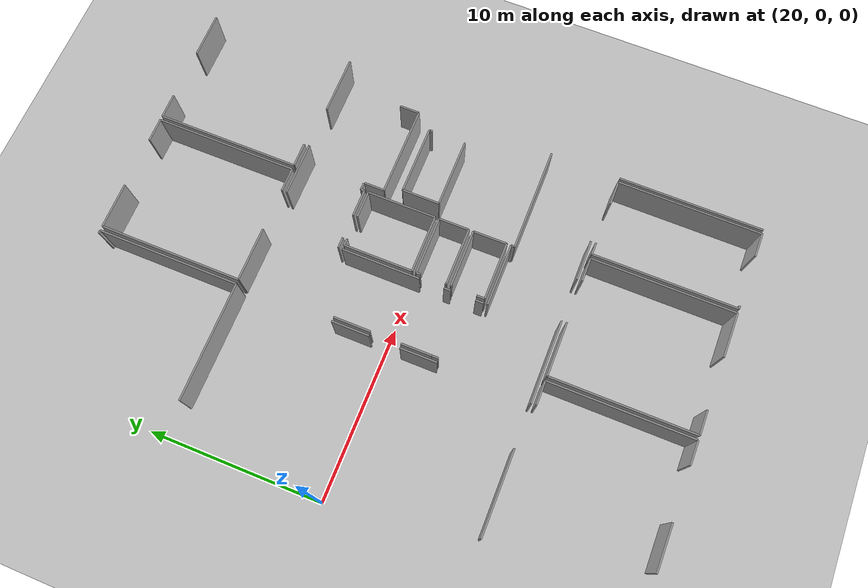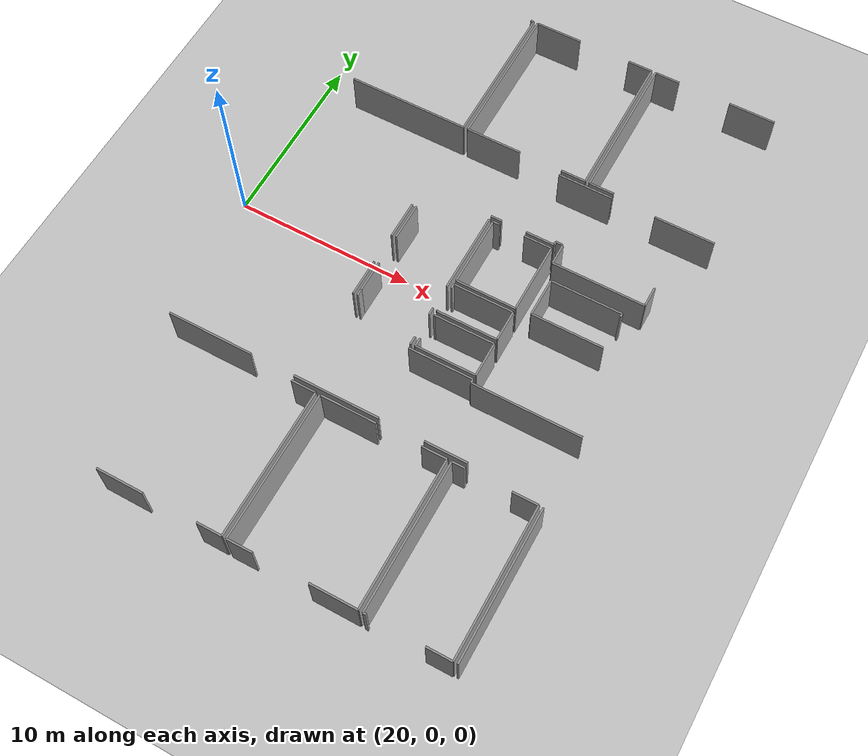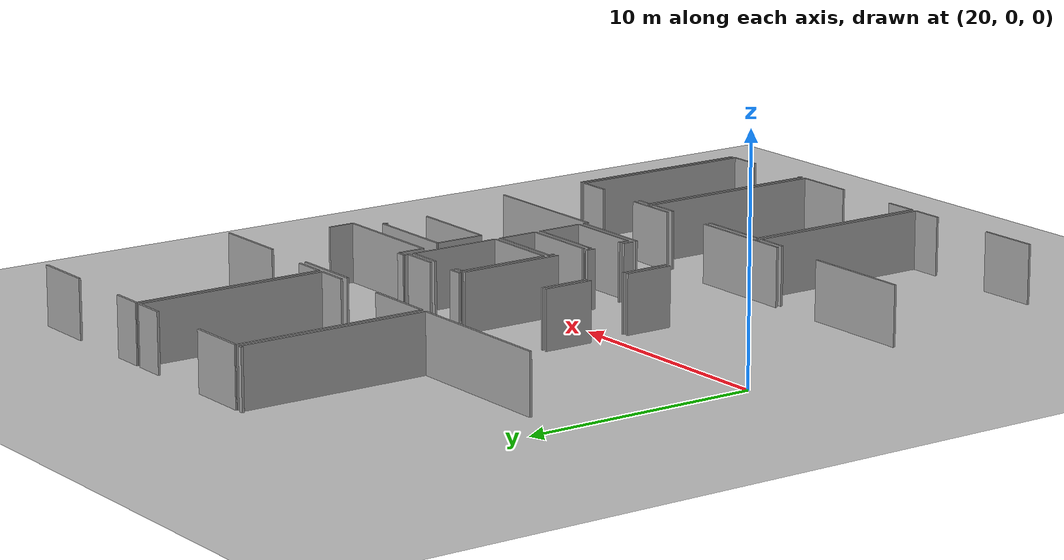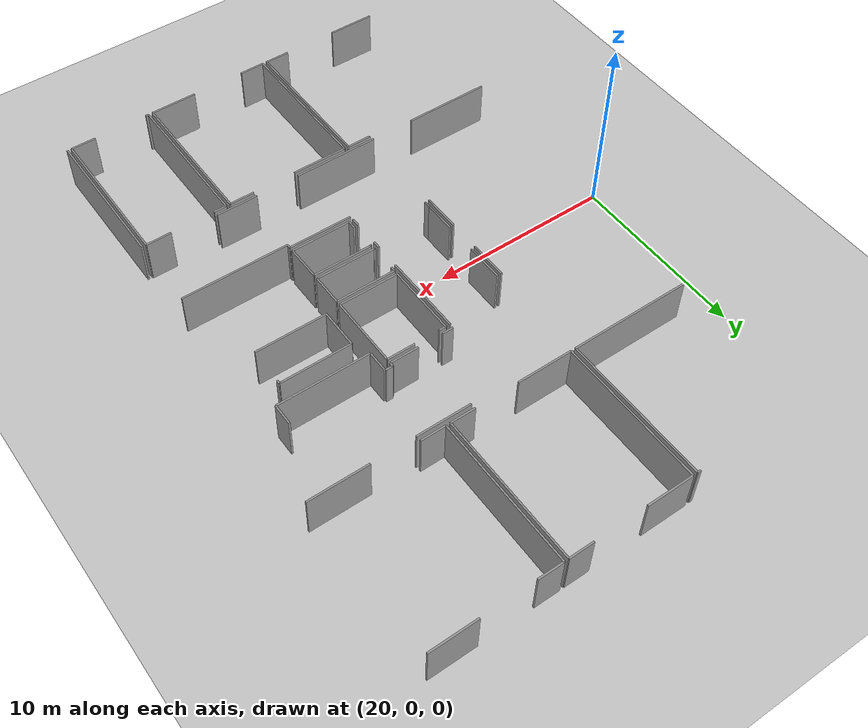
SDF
<sdf version="1.6">
 <world name="default">
  <model name="ground_plane">
   <static>1</static>
   <link name="link">
    <collision name="collision">
     <geometry><plane><normal>0 0 1</normal><size>100 100</size></plane></geometry>
     <surface><friction><ode><mu>100</mu><mu2>50</mu2></ode></friction></surface>
    </collision>
    <visual name="visual">
     <cast_shadows>0</cast_shadows>
     <geometry><plane><normal>0 0 1</normal><size>100 100</size></plane></geometry>
     <material>
      <script><uri>file://media/materials/scripts/gazebo.material</uri><name>Gazebo/Grey</name></script>
     </material>
    </visual>
   </link>
  </model>
  <model name="50041185">
   <static>1</static>
   <link name="Wall_84">
    <collision name="Wall_84_Collision">
     <geometry><box><size>1.37012417545 0.1 2.5</size></box></geometry>
     <pose>0.685062087724 0 1.25 0 0 0</pose>
    </collision>
    <visual name="Wall_84_Visual">
     <pose>0.685062087724 0 1.25 0 0 0</pose>
     <geometry><box><size>1.37012417545 0.1 2.5</size></box></geometry>
     <material>
      <script><uri>file://media/materials/scripts/gazebo.material</uri><name>Gazebo/Grey</name></script>
      <ambient>1 1 1 1</ambient>
     </material>
    </visual>
    <pose>100.242669581 -25.3513644047 0 0 0 0.0</pose>
   </link>
   <link name="Wall_85">
    <collision name="Wall_85_Collision">
     <geometry><box><size>8.23218393726 0.1 2.5</size></box></geometry>
     <pose>4.11609196863 0 1.25 0 0 0</pose>
    </collision>
    <visual name="Wall_85_Visual">
     <pose>4.11609196863 0 1.25 0 0 0</pose>
     <geometry><box><size>8.23218393726 0.1 2.5</size></box></geometry>
     <material>
      <script><uri>file://media/materials/scripts/gazebo.material</uri><name>Gazebo/Grey</name></script>
      <ambient>1 1 1 1</ambient>
     </material>
    </visual>
    <pose>101.612793757 -25.3513644047 0 0 0 -1.57079632679</pose>
   </link>
   <link name="Wall_86">
    <collision name="Wall_86_Collision">
     <geometry><box><size>1.38130886259 0.1 2.5</size></box></geometry>
     <pose>0.690654431297 0 1.25 0 0 0</pose>
    </collision>
    <visual name="Wall_86_Visual">
     <pose>0.690654431297 0 1.25 0 0 0</pose>
     <geometry><box><size>1.38130886259 0.1 2.5</size></box></geometry>
     <material>
      <script><uri>file://media/materials/scripts/gazebo.material</uri><name>Gazebo/Grey</name></script>
      <ambient>1 1 1 1</ambient>
     </material>
    </visual>
    <pose>101.612793757 -33.583548342 0 0 0 3.14159265359</pose>
   </link>
   <link name="Wall_87">
    <collision name="Wall_87_Collision">
     <geometry><box><size>2.59624620387 0.1 2.5</size></box></geometry>
     <pose>1.29812310193 0 1.25 0 0 0</pose>
    </collision>
    <visual name="Wall_87_Visual">
     <pose>1.29812310193 0 1.25 0 0 0</pose>
     <geometry><box><size>2.59624620387 0.1 2.5</size></box></geometry>
     <material>
      <script><uri>file://media/materials/scripts/gazebo.material</uri><name>Gazebo/Grey</name></script>
      <ambient>1 1 1 1</ambient>
     </material>
    </visual>
    <pose>97.2500031775 -33.583548342 0 0 0 -3.1408583315</pose>
   </link>
   <link name="Wall_88">
    <collision name="Wall_88_Collision">
     <geometry><box><size>8.23447171418 0.1 2.5</size></box></geometry>
     <pose>4.11723585709 0 1.25 0 0 0</pose>
    </collision>
    <visual name="Wall_88_Visual">
     <pose>4.11723585709 0 1.25 0 0 0</pose>
     <geometry><box><size>8.23447171418 0.1 2.5</size></box></geometry>
     <material>
      <script><uri>file://media/materials/scripts/gazebo.material</uri><name>Gazebo/Grey</name></script>
      <ambient>1 1 1 1</ambient>
     </material>
    </visual>
    <pose>101.860636256 -33.5913013638 0 0 0 1.57079632679</pose>
   </link>
   <link name="Wall_89">
    <collision name="Wall_89_Collision">
     <geometry><box><size>3.10489457161 0.1 2.5</size></box></geometry>
     <pose>1.55244728581 0 1.25 0 0 0</pose>
    </collision>
    <visual name="Wall_89_Visual">
     <pose>1.55244728581 0 1.25 0 0 0</pose>
     <geometry><box><size>3.10489457161 0.1 2.5</size></box></geometry>
     <material>
      <script><uri>file://media/materials/scripts/gazebo.material</uri><name>Gazebo/Grey</name></script>
      <ambient>1 1 1 1</ambient>
     </material>
    </visual>
    <pose>101.860636256 -25.3568296496 0 0 0 0.0</pose>
   </link>
   <link name="Wall_90">
    <collision name="Wall_90_Collision">
     <geometry><box><size>1.38219855362 0.1 2.5</size></box></geometry>
     <pose>0.691099276808 0 1.25 0 0 0</pose>
    </collision>
    <visual name="Wall_90_Visual">
     <pose>0.691099276808 0 1.25 0 0 0</pose>
     <geometry><box><size>1.38219855362 0.1 2.5</size></box></geometry>
     <material>
      <script><uri>file://media/materials/scripts/gazebo.material</uri><name>Gazebo/Grey</name></script>
      <ambient>1 1 1 1</ambient>
     </material>
    </visual>
    <pose>107.435694404 -25.3568296496 0 0 0 0.0</pose>
   </link>
   <link name="Wall_91">
    <collision name="Wall_91_Collision">
     <geometry><box><size>8.22354122447 0.1 2.5</size></box></geometry>
     <pose>4.11177061223 0 1.25 0 0 0</pose>
    </collision>
    <visual name="Wall_91_Visual">
     <pose>4.11177061223 0 1.25 0 0 0</pose>
     <geometry><box><size>8.22354122447 0.1 2.5</size></box></geometry>
     <material>
      <script><uri>file://media/materials/scripts/gazebo.material</uri><name>Gazebo/Grey</name></script>
      <ambient>1 1 1 1</ambient>
     </material>
    </visual>
    <pose>108.817892957 -25.3568296496 0 0 0 -1.57079632679</pose>
   </link>
   <link name="Wall_92">
    <collision name="Wall_92_Collision">
     <geometry><box><size>2.5797226706 0.1 2.5</size></box></geometry>
     <pose>1.2898613353 0 1.25 0 0 0</pose>
    </collision>
    <visual name="Wall_92_Visual">
     <pose>1.2898613353 0 1.25 0 0 0</pose>
     <geometry><box><size>2.5797226706 0.1 2.5</size></box></geometry>
     <material>
      <script><uri>file://media/materials/scripts/gazebo.material</uri><name>Gazebo/Grey</name></script>
      <ambient>1 1 1 1</ambient>
     </material>
    </visual>
    <pose>108.817892957 -33.5803708741 0 0 0 3.14159265359</pose>
   </link>
   <link name="Wall_93">
    <collision name="Wall_93_Collision">
     <geometry><box><size>1.40283113025 0.1 2.5</size></box></geometry>
     <pose>0.701415565127 0 1.25 0 0 0</pose>
    </collision>
    <visual name="Wall_93_Visual">
     <pose>0.701415565127 0 1.25 0 0 0</pose>
     <geometry><box><size>1.40283113025 0.1 2.5</size></box></geometry>
     <material>
      <script><uri>file://media/materials/scripts/gazebo.material</uri><name>Gazebo/Grey</name></script>
      <ambient>1 1 1 1</ambient>
     </material>
    </visual>
    <pose>103.263424802 -33.5803708741 0 0 0 -3.13380083882</pose>
   </link>
   <link name="Wall_94">
    <collision name="Wall_94_Collision">
     <geometry><box><size>8.23307362829 0.1 2.5</size></box></geometry>
     <pose>4.11653681414 0 1.25 0 0 0</pose>
    </collision>
    <visual name="Wall_94_Visual">
     <pose>4.11653681414 0 1.25 0 0 0</pose>
     <geometry><box><size>8.23307362829 0.1 2.5</size></box></geometry>
     <material>
      <script><uri>file://media/materials/scripts/gazebo.material</uri><name>Gazebo/Grey</name></script>
      <ambient>1 1 1 1</ambient>
     </material>
    </visual>
    <pose>109.065862555 -33.5834212433 0 0 0 1.57079632679</pose>
   </link>
   <link name="Wall_95">
    <collision name="Wall_95_Collision">
     <geometry><box><size>0.697771959481 0.1 2.5</size></box></geometry>
     <pose>0.34888597974 0 1.25 0 0 0</pose>
    </collision>
    <visual name="Wall_95_Visual">
     <pose>0.34888597974 0 1.25 0 0 0</pose>
     <geometry><box><size>0.697771959481 0.1 2.5</size></box></geometry>
     <material>
      <script><uri>file://media/materials/scripts/gazebo.material</uri><name>Gazebo/Grey</name></script>
      <ambient>1 1 1 1</ambient>
     </material>
    </visual>
    <pose>109.065862555 -25.350347615 0 0 0 0.0</pose>
   </link>
   <link name="Wall_96">
    <collision name="Wall_96_Collision">
     <geometry><box><size>1.3944000305 0.1 2.5</size></box></geometry>
     <pose>0.697200015252 0 1.25 0 0 0</pose>
    </collision>
    <visual name="Wall_96_Visual">
     <pose>0.697200015252 0 1.25 0 0 0</pose>
     <geometry><box><size>1.3944000305 0.1 2.5</size></box></geometry>
     <material>
      <script><uri>file://media/materials/scripts/gazebo.material</uri><name>Gazebo/Grey</name></script>
      <ambient>1 1 1 1</ambient>
     </material>
    </visual>
    <pose>112.24078852 -25.350347615 0 0 0 0.0</pose>
   </link>
   <link name="Wall_97">
    <collision name="Wall_97_Collision">
     <geometry><box><size>8.23396331931 0.1 2.5</size></box></geometry>
     <pose>4.11698165966 0 1.25 0 0 0</pose>
    </collision>
    <visual name="Wall_97_Visual">
     <pose>4.11698165966 0 1.25 0 0 0</pose>
     <geometry><box><size>8.23396331931 0.1 2.5</size></box></geometry>
     <material>
      <script><uri>file://media/materials/scripts/gazebo.material</uri><name>Gazebo/Grey</name></script>
      <ambient>1 1 1 1</ambient>
     </material>
    </visual>
    <pose>113.635188551 -25.350347615 0 0 0 -1.57079632679</pose>
   </link>
   <link name="Wall_98">
    <collision name="Wall_98_Collision">
     <geometry><box><size>1.3885534895 0.1 2.5</size></box></geometry>
     <pose>0.694276744748 0 1.25 0 0 0</pose>
    </collision>
    <visual name="Wall_98_Visual">
     <pose>0.694276744748 0 1.25 0 0 0</pose>
     <geometry><box><size>1.3885534895 0.1 2.5</size></box></geometry>
     <material>
      <script><uri>file://media/materials/scripts/gazebo.material</uri><name>Gazebo/Grey</name></script>
      <ambient>1 1 1 1</ambient>
     </material>
    </visual>
    <pose>113.635188551 -33.5843109343 0 0 0 3.14159265359</pose>
   </link>
   <link name="Wall_99">
    <collision name="Wall_99_Collision">
     <geometry><box><size>0.169679120468 0.1 2.5</size></box></geometry>
     <pose>0.0848395602342 0 1.25 0 0 0</pose>
    </collision>
    <visual name="Wall_99_Visual">
     <pose>0.0848395602342 0 1.25 0 0 0</pose>
     <geometry><box><size>0.169679120468 0.1 2.5</size></box></geometry>
     <material>
      <script><uri>file://media/materials/scripts/gazebo.material</uri><name>Gazebo/Grey</name></script>
      <ambient>1 1 1 1</ambient>
     </material>
    </visual>
    <pose>109.235539343 -33.5843109343 0 0 0 3.13634925595</pose>
   </link>
   <link name="Wall_100">
    <collision name="Wall_100_Collision">
     <geometry><box><size>8.24019115647 0.1 2.5</size></box></geometry>
     <pose>4.12009557824 0 1.25 0 0 0</pose>
    </collision>
    <visual name="Wall_100_Visual">
     <pose>4.12009557824 0 1.25 0 0 0</pose>
     <geometry><box><size>8.24019115647 0.1 2.5</size></box></geometry>
     <material>
      <script><uri>file://media/materials/scripts/gazebo.material</uri><name>Gazebo/Grey</name></script>
      <ambient>1 1 1 1</ambient>
     </material>
    </visual>
    <pose>113.866762414 -33.5888864881 0 0 0 1.57079632679</pose>
   </link>
   <link name="Wall_181">
    <collision name="Wall_181_Collision">
     <geometry><box><size>2.15839042184 0.1 2.5</size></box></geometry>
     <pose>1.07919521092 0 1.25 0 0 0</pose>
    </collision>
    <visual name="Wall_181_Visual">
     <pose>1.07919521092 0 1.25 0 0 0</pose>
     <geometry><box><size>2.15839042184 0.1 2.5</size></box></geometry>
     <material>
      <script><uri>file://media/materials/scripts/gazebo.material</uri><name>Gazebo/Grey</name></script>
      <ambient>1 1 1 1</ambient>
     </material>
    </visual>
    <pose>100.408025013 -13.7828391312 0 0 0 -1.57079632679</pose>
   </link>
   <link name="Wall_182">
    <collision name="Wall_182_Collision">
     <geometry><box><size>2.10005211047 0.1 2.5</size></box></geometry>
     <pose>1.05002605524 0 1.25 0 0 0</pose>
    </collision>
    <visual name="Wall_182_Visual">
     <pose>1.05002605524 0 1.25 0 0 0</pose>
     <geometry><box><size>2.10005211047 0.1 2.5</size></box></geometry>
     <material>
      <script><uri>file://media/materials/scripts/gazebo.material</uri><name>Gazebo/Grey</name></script>
      <ambient>1 1 1 1</ambient>
     </material>
    </visual>
    <pose>100.408025013 -17.6907434004 0 0 0 -1.57079632679</pose>
   </link>
   <link name="Wall_184">
    <collision name="Wall_184_Collision">
     <geometry><box><size>3.35337256447 0.1 2.5</size></box></geometry>
     <pose>1.67668628224 0 1.25 0 0 0</pose>
    </collision>
    <visual name="Wall_184_Visual">
     <pose>1.67668628224 0 1.25 0 0 0</pose>
     <geometry><box><size>3.35337256447 0.1 2.5</size></box></geometry>
     <material>
      <script><uri>file://media/materials/scripts/gazebo.material</uri><name>Gazebo/Grey</name></script>
      <ambient>1 1 1 1</ambient>
     </material>
    </visual>
    <pose>104.559831721 -16.9203980732 0 0 0 0.0</pose>
   </link>
   <link name="Wall_185">
    <collision name="Wall_185_Collision">
     <geometry><box><size>1.74048983846 0.1 2.5</size></box></geometry>
     <pose>0.870244919229 0 1.25 0 0 0</pose>
    </collision>
    <visual name="Wall_185_Visual">
     <pose>0.870244919229 0 1.25 0 0 0</pose>
     <geometry><box><size>1.74048983846 0.1 2.5</size></box></geometry>
     <material>
      <script><uri>file://media/materials/scripts/gazebo.material</uri><name>Gazebo/Grey</name></script>
      <ambient>1 1 1 1</ambient>
     </material>
    </visual>
    <pose>107.913204286 -16.9203980732 0 0 0 -1.57079632679</pose>
   </link>
   <link name="Wall_186">
    <collision name="Wall_186_Collision">
     <geometry><box><size>3.34790731962 0.1 2.5</size></box></geometry>
     <pose>1.67395365981 0 1.25 0 0 0</pose>
    </collision>
    <visual name="Wall_186_Visual">
     <pose>1.67395365981 0 1.25 0 0 0</pose>
     <geometry><box><size>3.34790731962 0.1 2.5</size></box></geometry>
     <material>
      <script><uri>file://media/materials/scripts/gazebo.material</uri><name>Gazebo/Grey</name></script>
      <ambient>1 1 1 1</ambient>
     </material>
    </visual>
    <pose>107.913204286 -18.6608879116 0 0 0 3.14159265359</pose>
   </link>
   <link name="Wall_187">
    <collision name="Wall_187_Collision">
     <geometry><box><size>0.0715565779941 0.1 2.5</size></box></geometry>
     <pose>0.0357782889971 0 1.25 0 0 0</pose>
    </collision>
    <visual name="Wall_187_Visual">
     <pose>0.0357782889971 0 1.25 0 0 0</pose>
     <geometry><box><size>0.0715565779941 0.1 2.5</size></box></geometry>
     <material>
      <script><uri>file://media/materials/scripts/gazebo.material</uri><name>Gazebo/Grey</name></script>
      <ambient>1 1 1 1</ambient>
     </material>
    </visual>
    <pose>104.565296966 -18.6608879116 0 0 0 1.57079632679</pose>
   </link>
   <link name="Wall_188">
    <collision name="Wall_188_Collision">
     <geometry><box><size>0.25463738793 0.1 2.5</size></box></geometry>
     <pose>0.127318693965 0 1.25 0 0 0</pose>
    </collision>
    <visual name="Wall_188_Visual">
     <pose>0.127318693965 0 1.25 0 0 0</pose>
     <geometry><box><size>0.25463738793 0.1 2.5</size></box></geometry>
     <material>
      <script><uri>file://media/materials/scripts/gazebo.material</uri><name>Gazebo/Grey</name></script>
      <ambient>1 1 1 1</ambient>
     </material>
    </visual>
    <pose>104.565296966 -17.1749768045 0 0 0 1.59226082808</pose>
   </link>
   <link name="Wall_189">
    <collision name="Wall_189_Collision">
     <geometry><box><size>3.34930540551 0.1 2.5</size></box></geometry>
     <pose>1.67465270275 0 1.25 0 0 0</pose>
    </collision>
    <visual name="Wall_189_Visual">
     <pose>1.67465270275 0 1.25 0 0 0</pose>
     <geometry><box><size>3.34930540551 0.1 2.5</size></box></geometry>
     <material>
      <script><uri>file://media/materials/scripts/gazebo.material</uri><name>Gazebo/Grey</name></script>
      <ambient>1 1 1 1</ambient>
     </material>
    </visual>
    <pose>107.922609591 -20.86719455 0 0 0 3.14159265359</pose>
   </link>
   <link name="Wall_190">
    <collision name="Wall_190_Collision">
     <geometry><box><size>0.465562602473 0.1 2.5</size></box></geometry>
     <pose>0.232781301237 0 1.25 0 0 0</pose>
    </collision>
    <visual name="Wall_190_Visual">
     <pose>0.232781301237 0 1.25 0 0 0</pose>
     <geometry><box><size>0.465562602473 0.1 2.5</size></box></geometry>
     <material>
      <script><uri>file://media/materials/scripts/gazebo.material</uri><name>Gazebo/Grey</name></script>
      <ambient>1 1 1 1</ambient>
     </material>
    </visual>
    <pose>104.573304185 -20.86719455 0 0 0 1.57079632679</pose>
   </link>
   <link name="Wall_191">
    <collision name="Wall_191_Collision">
     <geometry><box><size>0.0655829382682 0.1 2.5</size></box></geometry>
     <pose>0.0327914691341 0 1.25 0 0 0</pose>
    </collision>
    <visual name="Wall_191_Visual">
     <pose>0.0327914691341 0 1.25 0 0 0</pose>
     <geometry><box><size>0.0655829382682 0.1 2.5</size></box></geometry>
     <material>
      <script><uri>file://media/materials/scripts/gazebo.material</uri><name>Gazebo/Grey</name></script>
      <ambient>1 1 1 1</ambient>
     </material>
    </visual>
    <pose>104.573304185 -18.9861335299 0 0 0 1.57079632679</pose>
   </link>
   <link name="Wall_192">
    <collision name="Wall_192_Collision">
     <geometry><box><size>3.33875621195 0.1 2.5</size></box></geometry>
     <pose>1.66937810597 0 1.25 0 0 0</pose>
    </collision>
    <visual name="Wall_192_Visual">
     <pose>1.66937810597 0 1.25 0 0 0</pose>
     <geometry><box><size>3.33875621195 0.1 2.5</size></box></geometry>
     <material>
      <script><uri>file://media/materials/scripts/gazebo.material</uri><name>Gazebo/Grey</name></script>
      <ambient>1 1 1 1</ambient>
     </material>
    </visual>
    <pose>104.573304185 -18.9205505916 0 0 0 0.0</pose>
   </link>
   <link name="Wall_193">
    <collision name="Wall_193_Collision">
     <geometry><box><size>1.94667254209 0.1 2.5</size></box></geometry>
     <pose>0.973336271043 0 1.25 0 0 0</pose>
    </collision>
    <visual name="Wall_193_Visual">
     <pose>0.973336271043 0 1.25 0 0 0</pose>
     <geometry><box><size>1.94667254209 0.1 2.5</size></box></geometry>
     <material>
      <script><uri>file://media/materials/scripts/gazebo.material</uri><name>Gazebo/Grey</name></script>
      <ambient>1 1 1 1</ambient>
     </material>
    </visual>
    <pose>107.912060397 -18.9205505916 0 0 0 -1.56537721035</pose>
   </link>
   <link name="Wall_194">
    <collision name="Wall_194_Collision">
     <geometry><box><size>1.76006304096 0.1 2.5</size></box></geometry>
     <pose>0.880031520482 0 1.25 0 0 0</pose>
    </collision>
    <visual name="Wall_194_Visual">
     <pose>0.880031520482 0 1.25 0 0 0</pose>
     <geometry><box><size>1.76006304096 0.1 2.5</size></box></geometry>
     <material>
      <script><uri>file://media/materials/scripts/gazebo.material</uri><name>Gazebo/Grey</name></script>
      <ambient>1 1 1 1</ambient>
     </material>
    </visual>
    <pose>100.645318319 -19.4044154094 0 0 0 1.57079632679</pose>
   </link>
   <link name="Wall_195">
    <collision name="Wall_195_Collision">
     <geometry><box><size>2.11441426556 0.1 2.5</size></box></geometry>
     <pose>1.05720713278 0 1.25 0 0 0</pose>
    </collision>
    <visual name="Wall_195_Visual">
     <pose>1.05720713278 0 1.25 0 0 0</pose>
     <geometry><box><size>2.11441426556 0.1 2.5</size></box></geometry>
     <material>
      <script><uri>file://media/materials/scripts/gazebo.material</uri><name>Gazebo/Grey</name></script>
      <ambient>1 1 1 1</ambient>
     </material>
    </visual>
    <pose>100.645318319 -15.8969991993 0 0 0 1.57079632679</pose>
   </link>
   <link name="Wall_196">
    <collision name="Wall_196_Collision">
     <geometry><box><size>4.52001169308 0.1 2.5</size></box></geometry>
     <pose>2.26000584654 0 1.25 0 0 0</pose>
    </collision>
    <visual name="Wall_196_Visual">
     <pose>2.26000584654 0 1.25 0 0 0</pose>
     <geometry><box><size>4.52001169308 0.1 2.5</size></box></geometry>
     <material>
      <script><uri>file://media/materials/scripts/gazebo.material</uri><name>Gazebo/Grey</name></script>
      <ambient>1 1 1 1</ambient>
     </material>
    </visual>
    <pose>104.316056381 -12.6862313959 0 0 0 -1.57079632679</pose>
   </link>
   <link name="Wall_197">
    <collision name="Wall_197_Collision">
     <geometry><box><size>0.402140342404 0.1 2.5</size></box></geometry>
     <pose>0.201070171202 0 1.25 0 0 0</pose>
    </collision>
    <visual name="Wall_197_Visual">
     <pose>0.201070171202 0 1.25 0 0 0</pose>
     <geometry><box><size>0.402140342404 0.1 2.5</size></box></geometry>
     <material>
      <script><uri>file://media/materials/scripts/gazebo.material</uri><name>Gazebo/Grey</name></script>
      <ambient>1 1 1 1</ambient>
     </material>
    </visual>
    <pose>104.316056381 -18.6144968797 0 0 0 -1.57079632679</pose>
   </link>
   <link name="Wall_198">
    <collision name="Wall_198_Collision">
     <geometry><box><size>0.465562602473 0.1 2.5</size></box></geometry>
     <pose>0.232781301237 0 1.25 0 0 0</pose>
    </collision>
    <visual name="Wall_198_Visual">
     <pose>0.232781301237 0 1.25 0 0 0</pose>
     <geometry><box><size>0.465562602473 0.1 2.5</size></box></geometry>
     <material>
      <script><uri>file://media/materials/scripts/gazebo.material</uri><name>Gazebo/Grey</name></script>
      <ambient>1 1 1 1</ambient>
     </material>
    </visual>
    <pose>104.316056381 -20.4360757 0 0 0 -1.57079632679</pose>
   </link>
   <link name="Wall_199">
    <collision name="Wall_199_Collision">
     <geometry><box><size>0.372297224206 0.1 2.5</size></box></geometry>
     <pose>0.186148612103 0 1.25 0 0 0</pose>
    </collision>
    <visual name="Wall_199_Visual">
     <pose>0.186148612103 0 1.25 0 0 0</pose>
     <geometry><box><size>0.372297224206 0.1 2.5</size></box></geometry>
     <material>
      <script><uri>file://media/materials/scripts/gazebo.material</uri><name>Gazebo/Grey</name></script>
      <ambient>1 1 1 1</ambient>
     </material>
    </visual>
    <pose>100.649639675 -19.7766875532 0 0 0 1.58240386281</pose>
   </link>
   <link name="Wall_222">
    <collision name="Wall_222_Collision">
     <geometry><box><size>2.14962061033 0.1 2.5</size></box></geometry>
     <pose>1.07481030516 0 1.25 0 0 0</pose>
    </collision>
    <visual name="Wall_222_Visual">
     <pose>1.07481030516 0 1.25 0 0 0</pose>
     <geometry><box><size>2.14962061033 0.1 2.5</size></box></geometry>
     <material>
      <script><uri>file://media/materials/scripts/gazebo.material</uri><name>Gazebo/Grey</name></script>
      <ambient>1 1 1 1</ambient>
     </material>
    </visual>
    <pose>108.742523418 -16.5724017845 0 0 0 1.57079632679</pose>
   </link>
   <link name="Wall_223">
    <collision name="Wall_223_Collision">
     <geometry><box><size>3.94654227939 0.1 2.5</size></box></geometry>
     <pose>1.97327113969 0 1.25 0 0 0</pose>
    </collision>
    <visual name="Wall_223_Visual">
     <pose>1.97327113969 0 1.25 0 0 0</pose>
     <geometry><box><size>3.94654227939 0.1 2.5</size></box></geometry>
     <material>
      <script><uri>file://media/materials/scripts/gazebo.material</uri><name>Gazebo/Grey</name></script>
      <ambient>1 1 1 1</ambient>
     </material>
    </visual>
    <pose>108.742523418 -14.4227811741 0 0 0 0.0</pose>
   </link>
   <link name="Wall_224">
    <collision name="Wall_224_Collision">
     <geometry><box><size>0.198273999415 0.1 2.5</size></box></geometry>
     <pose>0.0991369997077 0 1.25 0 0 0</pose>
    </collision>
    <visual name="Wall_224_Visual">
     <pose>0.0991369997077 0 1.25 0 0 0</pose>
     <geometry><box><size>0.198273999415 0.1 2.5</size></box></geometry>
     <material>
      <script><uri>file://media/materials/scripts/gazebo.material</uri><name>Gazebo/Grey</name></script>
      <ambient>1 1 1 1</ambient>
     </material>
    </visual>
    <pose>112.689065697 -14.4227811741 0 0 0 -1.57079632679</pose>
   </link>
   <link name="Wall_225">
    <collision name="Wall_225_Collision">
     <geometry><box><size>3.94654555397 0.1 2.5</size></box></geometry>
     <pose>1.97327277698 0 1.25 0 0 0</pose>
    </collision>
    <visual name="Wall_225_Visual">
     <pose>1.97327277698 0 1.25 0 0 0</pose>
     <geometry><box><size>3.94654555397 0.1 2.5</size></box></geometry>
     <material>
      <script><uri>file://media/materials/scripts/gazebo.material</uri><name>Gazebo/Grey</name></script>
      <ambient>1 1 1 1</ambient>
     </material>
    </visual>
    <pose>112.689065697 -16.5774857332 0 0 0 3.14030445102</pose>
   </link>
   <link name="Wall_255">
    <collision name="Wall_255_Collision">
     <geometry><box><size>3.57643081381 0.1 2.5</size></box></geometry>
     <pose>1.78821540691 0 1.25 0 0 0</pose>
    </collision>
    <visual name="Wall_255_Visual">
     <pose>1.78821540691 0 1.25 0 0 0</pose>
     <geometry><box><size>3.57643081381 0.1 2.5</size></box></geometry>
     <material>
      <script><uri>file://media/materials/scripts/gazebo.material</uri><name>Gazebo/Grey</name></script>
      <ambient>1 1 1 1</ambient>
     </material>
    </visual>
    <pose>104.334739892 -21.1166893326 0 0 0 0.0</pose>
   </link>
   <link name="Wall_256">
    <collision name="Wall_256_Collision">
     <geometry><box><size>0.212509055784 0.1 2.5</size></box></geometry>
     <pose>0.106254527892 0 1.25 0 0 0</pose>
    </collision>
    <visual name="Wall_256_Visual">
     <pose>0.106254527892 0 1.25 0 0 0</pose>
     <geometry><box><size>0.212509055784 0.1 2.5</size></box></geometry>
     <material>
      <script><uri>file://media/materials/scripts/gazebo.material</uri><name>Gazebo/Grey</name></script>
      <ambient>1 1 1 1</ambient>
     </material>
    </visual>
    <pose>107.911170706 -21.1166893326 0 0 0 -1.57079632679</pose>
   </link>
   <link name="Wall_257">
    <collision name="Wall_257_Collision">
     <geometry><box><size>5.97999466185 0.1 2.5</size></box></geometry>
     <pose>2.98999733093 0 1.25 0 0 0</pose>
    </collision>
    <visual name="Wall_257_Visual">
     <pose>2.98999733093 0 1.25 0 0 0</pose>
     <geometry><box><size>5.97999466185 0.1 2.5</size></box></geometry>
     <material>
      <script><uri>file://media/materials/scripts/gazebo.material</uri><name>Gazebo/Grey</name></script>
      <ambient>1 1 1 1</ambient>
     </material>
    </visual>
    <pose>107.911170706 -21.3291983884 0 0 0 0.0</pose>
   </link>
   <link name="Wall_265">
    <collision name="Wall_265_Collision">
     <geometry><box><size>2.33289696107 0.1 2.5</size></box></geometry>
     <pose>1.16644848053 0 1.25 0 0 0</pose>
    </collision>
    <visual name="Wall_265_Visual">
     <pose>1.16644848053 0 1.25 0 0 0</pose>
     <geometry><box><size>2.33289696107 0.1 2.5</size></box></geometry>
     <material>
      <script><uri>file://media/materials/scripts/gazebo.material</uri><name>Gazebo/Grey</name></script>
      <ambient>1 1 1 1</ambient>
     </material>
    </visual>
    <pose>109.752831124 -25.0711117325 0 0 0 3.14159265359</pose>
   </link>
   <link name="Wall_266">
    <collision name="Wall_266_Collision">
     <geometry><box><size>4.73747759885 0.1 2.5</size></box></geometry>
     <pose>2.36873879943 0 1.25 0 0 0</pose>
    </collision>
    <visual name="Wall_266_Visual">
     <pose>2.36873879943 0 1.25 0 0 0</pose>
     <geometry><box><size>4.73747759885 0.1 2.5</size></box></geometry>
     <material>
      <script><uri>file://media/materials/scripts/gazebo.material</uri><name>Gazebo/Grey</name></script>
      <ambient>1 1 1 1</ambient>
     </material>
    </visual>
    <pose>104.945703428 -25.0711117325 0 0 0 3.14159265359</pose>
   </link>
   <link name="Wall_267">
    <collision name="Wall_267_Collision">
     <geometry><box><size>4.75743209751 0.1 2.5</size></box></geometry>
     <pose>2.37871604876 0 1.25 0 0 0</pose>
    </collision>
    <visual name="Wall_267_Visual">
     <pose>2.37871604876 0 1.25 0 0 0</pose>
     <geometry><box><size>4.75743209751 0.1 2.5</size></box></geometry>
     <material>
      <script><uri>file://media/materials/scripts/gazebo.material</uri><name>Gazebo/Grey</name></script>
      <ambient>1 1 1 1</ambient>
     </material>
    </visual>
    <pose>97.7529328029 -25.0711117325 0 0 0 3.14159265359</pose>
   </link>
   <link name="Wall_338">
    <collision name="Wall_338_Collision">
     <geometry><box><size>0.182132462283 0.1 2.5</size></box></geometry>
     <pose>0.0910662311417 0 1.25 0 0 0</pose>
    </collision>
    <visual name="Wall_338_Visual">
     <pose>0.0910662311417 0 1.25 0 0 0</pose>
     <geometry><box><size>0.182132462283 0.1 2.5</size></box></geometry>
     <material>
      <script><uri>file://media/materials/scripts/gazebo.material</uri><name>Gazebo/Grey</name></script>
      <ambient>1 1 1 1</ambient>
     </material>
    </visual>
    <pose>100.216105949 -0.0222422755754 0 0 0 0.0</pose>
   </link>
   <link name="Wall_339">
    <collision name="Wall_339_Collision">
     <geometry><box><size>8.20269703479 0.1 2.5</size></box></geometry>
     <pose>4.10134851739 0 1.25 0 0 0</pose>
    </collision>
    <visual name="Wall_339_Visual">
     <pose>4.10134851739 0 1.25 0 0 0</pose>
     <geometry><box><size>8.20269703479 0.1 2.5</size></box></geometry>
     <material>
      <script><uri>file://media/materials/scripts/gazebo.material</uri><name>Gazebo/Grey</name></script>
      <ambient>1 1 1 1</ambient>
     </material>
    </visual>
    <pose>100.398238412 -0.0222422755754 0 0 0 -1.57079632679</pose>
   </link>
   <link name="Wall_340">
    <collision name="Wall_340_Collision">
     <geometry><box><size>6.78262306333 0.1 2.5</size></box></geometry>
     <pose>3.39131153167 0 1.25 0 0 0</pose>
    </collision>
    <visual name="Wall_340_Visual">
     <pose>3.39131153167 0 1.25 0 0 0</pose>
     <geometry><box><size>6.78262306333 0.1 2.5</size></box></geometry>
     <material>
      <script><uri>file://media/materials/scripts/gazebo.material</uri><name>Gazebo/Grey</name></script>
      <ambient>1 1 1 1</ambient>
     </material>
    </visual>
    <pose>100.398238412 -8.22493931036 0 0 0 3.14159265359</pose>
   </link>
   <link name="Wall_342">
    <collision name="Wall_342_Collision">
     <geometry><box><size>8.20917906938 0.1 2.5</size></box></geometry>
     <pose>4.10458953469 0 1.25 0 0 0</pose>
    </collision>
    <visual name="Wall_342_Visual">
     <pose>4.10458953469 0 1.25 0 0 0</pose>
     <geometry><box><size>8.20917906938 0.1 2.5</size></box></geometry>
     <material>
      <script><uri>file://media/materials/scripts/gazebo.material</uri><name>Gazebo/Grey</name></script>
      <ambient>1 1 1 1</ambient>
     </material>
    </visual>
    <pose>100.656375907 -8.22354122447 0 0 0 1.57079632679</pose>
   </link>
   <link name="Wall_343">
    <collision name="Wall_343_Collision">
     <geometry><box><size>2.61899617433 0.1 2.5</size></box></geometry>
     <pose>1.30949808716 0 1.25 0 0 0</pose>
    </collision>
    <visual name="Wall_343_Visual">
     <pose>1.30949808716 0 1.25 0 0 0</pose>
     <geometry><box><size>2.61899617433 0.1 2.5</size></box></geometry>
     <material>
      <script><uri>file://media/materials/scripts/gazebo.material</uri><name>Gazebo/Grey</name></script>
      <ambient>1 1 1 1</ambient>
     </material>
    </visual>
    <pose>100.656375907 -0.0143621550859 0 0 0 0.0</pose>
   </link>
   <link name="Wall_344">
    <collision name="Wall_344_Collision">
     <geometry><box><size>1.37292034723 0.1 2.5</size></box></geometry>
     <pose>0.686460173617 0 1.25 0 0 0</pose>
    </collision>
    <visual name="Wall_344_Visual">
     <pose>0.686460173617 0 1.25 0 0 0</pose>
     <geometry><box><size>1.37292034723 0.1 2.5</size></box></geometry>
     <material>
      <script><uri>file://media/materials/scripts/gazebo.material</uri><name>Gazebo/Grey</name></script>
      <ambient>1 1 1 1</ambient>
     </material>
    </visual>
    <pose>106.24185615 -0.0143621550859 0 0 0 0.0</pose>
   </link>
   <link name="Wall_345">
    <collision name="Wall_345_Collision">
     <geometry><box><size>8.20739968734 0.1 2.5</size></box></geometry>
     <pose>4.10369984367 0 1.25 0 0 0</pose>
    </collision>
    <visual name="Wall_345_Visual">
     <pose>4.10369984367 0 1.25 0 0 0</pose>
     <geometry><box><size>8.20739968734 0.1 2.5</size></box></geometry>
     <material>
      <script><uri>file://media/materials/scripts/gazebo.material</uri><name>Gazebo/Grey</name></script>
      <ambient>1 1 1 1</ambient>
     </material>
    </visual>
    <pose>107.614776497 -0.0143621550859 0 0 0 -1.57079632679</pose>
   </link>
   <link name="Wall_346">
    <collision name="Wall_346_Collision">
     <geometry><box><size>1.38842639078 0.1 2.5</size></box></geometry>
     <pose>0.694213195389 0 1.25 0 0 0</pose>
    </collision>
    <visual name="Wall_346_Visual">
     <pose>0.694213195389 0 1.25 0 0 0</pose>
     <geometry><box><size>1.38842639078 0.1 2.5</size></box></geometry>
     <material>
      <script><uri>file://media/materials/scripts/gazebo.material</uri><name>Gazebo/Grey</name></script>
      <ambient>1 1 1 1</ambient>
     </material>
    </visual>
    <pose>107.614776497 -8.22176184242 0 0 0 3.14159265359</pose>
   </link>
   <link name="Wall_347">
    <collision name="Wall_347_Collision">
     <geometry><box><size>3.11417328635 0.1 2.5</size></box></geometry>
     <pose>1.55708664318 0 1.25 0 0 0</pose>
    </collision>
    <visual name="Wall_347_Visual">
     <pose>1.55708664318 0 1.25 0 0 0</pose>
     <geometry><box><size>3.11417328635 0.1 2.5</size></box></geometry>
     <material>
      <script><uri>file://media/materials/scripts/gazebo.material</uri><name>Gazebo/Grey</name></script>
      <ambient>1 1 1 1</ambient>
     </material>
    </visual>
    <pose>103.770548685 -8.22176184242 0 0 0 -3.14102127172</pose>
   </link>
   <link name="Wall_348">
    <collision name="Wall_348_Collision">
     <geometry><box><size>8.20841647708 0.1 2.5</size></box></geometry>
     <pose>4.10420823854 0 1.25 0 0 0</pose>
    </collision>
    <visual name="Wall_348_Visual">
     <pose>4.10420823854 0 1.25 0 0 0</pose>
     <geometry><box><size>8.20841647708 0.1 2.5</size></box></geometry>
     <material>
      <script><uri>file://media/materials/scripts/gazebo.material</uri><name>Gazebo/Grey</name></script>
      <ambient>1 1 1 1</ambient>
     </material>
    </visual>
    <pose>107.858170541 -8.22417671806 0 0 0 1.57079632679</pose>
   </link>
   <link name="Wall_349">
    <collision name="Wall_349_Collision">
     <geometry><box><size>1.4059660138 0.1 2.5</size></box></geometry>
     <pose>0.702983006901 0 1.25 0 0 0</pose>
    </collision>
    <visual name="Wall_349_Visual">
     <pose>0.702983006901 0 1.25 0 0 0</pose>
     <geometry><box><size>1.4059660138 0.1 2.5</size></box></geometry>
     <material>
      <script><uri>file://media/materials/scripts/gazebo.material</uri><name>Gazebo/Grey</name></script>
      <ambient>1 1 1 1</ambient>
     </material>
    </visual>
    <pose>107.858170541 -0.0157602409792 0 0 0 0.0</pose>
   </link>
   <link name="Wall_350">
    <collision name="Wall_350_Collision">
     <geometry><box><size>2.6050153154 0.1 2.5</size></box></geometry>
     <pose>1.3025076577 0 1.25 0 0 0</pose>
    </collision>
    <visual name="Wall_350_Visual">
     <pose>1.3025076577 0 1.25 0 0 0</pose>
     <geometry><box><size>2.6050153154 0.1 2.5</size></box></geometry>
     <material>
      <script><uri>file://media/materials/scripts/gazebo.material</uri><name>Gazebo/Grey</name></script>
      <ambient>1 1 1 1</ambient>
     </material>
    </visual>
    <pose>112.229222537 -0.0157602409792 0 0 0 0.0</pose>
   </link>
   <link name="Wall_353">
    <collision name="Wall_353_Collision">
     <geometry><box><size>1.39174981319 0.1 2.5</size></box></geometry>
     <pose>0.695874906593 0 1.25 0 0 0</pose>
    </collision>
    <visual name="Wall_353_Visual">
     <pose>0.695874906593 0 1.25 0 0 0</pose>
     <geometry><box><size>1.39174981319 0.1 2.5</size></box></geometry>
     <material>
      <script><uri>file://media/materials/scripts/gazebo.material</uri><name>Gazebo/Grey</name></script>
      <ambient>1 1 1 1</ambient>
     </material>
    </visual>
    <pose>109.249901498 -8.21693209116 0 0 0 -3.13638722115</pose>
   </link>
   <link name="Wall_382">
    <collision name="Wall_382_Collision">
     <geometry><box><size>3.9690387524 0.1 2.5</size></box></geometry>
     <pose>1.9845193762 0 1.25 0 0 0</pose>
    </collision>
    <visual name="Wall_382_Visual">
     <pose>1.9845193762 0 1.25 0 0 0</pose>
     <geometry><box><size>3.9690387524 0.1 2.5</size></box></geometry>
     <material>
      <script><uri>file://media/materials/scripts/gazebo.material</uri><name>Gazebo/Grey</name></script>
      <ambient>1 1 1 1</ambient>
     </material>
    </visual>
    <pose>104.562882091 -16.6798002008 0 0 0 1.57079632679</pose>
   </link>
   <link name="Wall_383">
    <collision name="Wall_383_Collision">
     <geometry><box><size>0.385871706554 0.1 2.5</size></box></geometry>
     <pose>0.192935853277 0 1.25 0 0 0</pose>
    </collision>
    <visual name="Wall_383_Visual">
     <pose>0.192935853277 0 1.25 0 0 0</pose>
     <geometry><box><size>0.385871706554 0.1 2.5</size></box></geometry>
     <material>
      <script><uri>file://media/materials/scripts/gazebo.material</uri><name>Gazebo/Grey</name></script>
      <ambient>1 1 1 1</ambient>
     </material>
    </visual>
    <pose>104.562882091 -12.7107614484 0 0 0 0.0</pose>
   </link>
   <link name="Wall_384">
    <collision name="Wall_384_Collision">
     <geometry><box><size>1.55085855184 0.1 2.5</size></box></geometry>
     <pose>0.775429275919 0 1.25 0 0 0</pose>
    </collision>
    <visual name="Wall_384_Visual">
     <pose>0.775429275919 0 1.25 0 0 0</pose>
     <geometry><box><size>1.55085855184 0.1 2.5</size></box></geometry>
     <material>
      <script><uri>file://media/materials/scripts/gazebo.material</uri><name>Gazebo/Grey</name></script>
      <ambient>1 1 1 1</ambient>
     </material>
    </visual>
    <pose>106.358024378 -12.7107614484 0 0 0 0.0</pose>
   </link>
   <link name="Wall_385">
    <collision name="Wall_385_Collision">
     <geometry><box><size>3.96967424599 0.1 2.5</size></box></geometry>
     <pose>1.98483712299 0 1.25 0 0 0</pose>
    </collision>
    <visual name="Wall_385_Visual">
     <pose>1.98483712299 0 1.25 0 0 0</pose>
     <geometry><box><size>3.96967424599 0.1 2.5</size></box></geometry>
     <material>
      <script><uri>file://media/materials/scripts/gazebo.material</uri><name>Gazebo/Grey</name></script>
      <ambient>1 1 1 1</ambient>
     </material>
    </visual>
    <pose>107.908882929 -12.7107614484 0 0 0 -1.57079632679</pose>
   </link>
   <link name="Wall_386">
    <collision name="Wall_386_Collision">
     <geometry><box><size>3.3460008992 0.1 2.5</size></box></geometry>
     <pose>1.6730004496 0 1.25 0 0 0</pose>
    </collision>
    <visual name="Wall_386_Visual">
     <pose>1.6730004496 0 1.25 0 0 0</pose>
     <geometry><box><size>3.3460008992 0.1 2.5</size></box></geometry>
     <material>
      <script><uri>file://media/materials/scripts/gazebo.material</uri><name>Gazebo/Grey</name></script>
      <ambient>1 1 1 1</ambient>
     </material>
    </visual>
    <pose>107.908882929 -16.6804356944 0 0 0 3.14140272728</pose>
   </link>
   <link name="Wall_387">
    <collision name="Wall_387_Collision">
     <geometry><box><size>1.14465105047 0.1 2.5</size></box></geometry>
     <pose>0.572325525235 0 1.25 0 0 0</pose>
    </collision>
    <visual name="Wall_387_Visual">
     <pose>0.572325525235 0 1.25 0 0 0</pose>
     <geometry><box><size>1.14465105047 0.1 2.5</size></box></geometry>
     <material>
      <script><uri>file://media/materials/scripts/gazebo.material</uri><name>Gazebo/Grey</name></script>
      <ambient>1 1 1 1</ambient>
     </material>
    </visual>
    <pose>108.343560543 -13.4621690667 0 0 0 1.57079632679</pose>
   </link>
   <link name="Wall_388">
    <collision name="Wall_388_Collision">
     <geometry><box><size>1.1463033338 0.1 2.5</size></box></geometry>
     <pose>0.5731516669 0 1.25 0 0 0</pose>
    </collision>
    <visual name="Wall_388_Visual">
     <pose>0.5731516669 0 1.25 0 0 0</pose>
     <geometry><box><size>1.1463033338 0.1 2.5</size></box></geometry>
     <material>
      <script><uri>file://media/materials/scripts/gazebo.material</uri><name>Gazebo/Grey</name></script>
      <ambient>1 1 1 1</ambient>
     </material>
    </visual>
    <pose>113.482288794 -12.3175180162 0 0 0 -1.57079632679</pose>
   </link>
   <link name="Wall_389">
    <collision name="Wall_389_Collision">
     <geometry><box><size>5.13872851587 0.1 2.5</size></box></geometry>
     <pose>2.56936425793 0 1.25 0 0 0</pose>
    </collision>
    <visual name="Wall_389_Visual">
     <pose>2.56936425793 0 1.25 0 0 0</pose>
     <geometry><box><size>5.13872851587 0.1 2.5</size></box></geometry>
     <material>
      <script><uri>file://media/materials/scripts/gazebo.material</uri><name>Gazebo/Grey</name></script>
      <ambient>1 1 1 1</ambient>
     </material>
    </visual>
    <pose>113.482288794 -13.46382135 0 0 0 3.14127111815</pose>
   </link>
   <link name="Wall_412">
    <collision name="Wall_412_Collision">
     <geometry><box><size>3.05329249228 0.1 2.5</size></box></geometry>
     <pose>1.52664624614 0 1.25 0 0 0</pose>
    </collision>
    <visual name="Wall_412_Visual">
     <pose>1.52664624614 0 1.25 0 0 0</pose>
     <geometry><box><size>3.05329249228 0.1 2.5</size></box></geometry>
     <material>
      <script><uri>file://media/materials/scripts/gazebo.material</uri><name>Gazebo/Grey</name></script>
      <ambient>1 1 1 1</ambient>
     </material>
    </visual>
    <pose>106.234230227 -8.50646296979 0 0 0 0.0</pose>
   </link>
   <link name="Wall_413">
    <collision name="Wall_413_Collision">
     <geometry><box><size>3.33011349915 0.1 2.5</size></box></geometry>
     <pose>1.66505674958 0 1.25 0 0 0</pose>
    </collision>
    <visual name="Wall_413_Visual">
     <pose>1.66505674958 0 1.25 0 0 0</pose>
     <geometry><box><size>3.33011349915 0.1 2.5</size></box></geometry>
     <material>
      <script><uri>file://media/materials/scripts/gazebo.material</uri><name>Gazebo/Grey</name></script>
      <ambient>1 1 1 1</ambient>
     </material>
    </visual>
    <pose>111.728199392 -8.50646296979 0 0 0 0.0</pose>
   </link>
   <link name="Wall_419">
    <collision name="Wall_419_Collision">
     <geometry><box><size>0.398708677029 0.1 2.5</size></box></geometry>
     <pose>0.199354338515 0 1.25 0 0 0</pose>
    </collision>
    <visual name="Wall_419_Visual">
     <pose>0.199354338515 0 1.25 0 0 0</pose>
     <geometry><box><size>0.398708677029 0.1 2.5</size></box></geometry>
     <material>
      <script><uri>file://media/materials/scripts/gazebo.material</uri><name>Gazebo/Grey</name></script>
      <ambient>1 1 1 1</ambient>
     </material>
    </visual>
    <pose>108.318013701 -12.2601964946 0 0 0 3.14159265359</pose>
   </link>
   <link name="Wall_420">
    <collision name="Wall_420_Collision">
     <geometry><box><size>0.208441896821 0.1 2.5</size></box></geometry>
     <pose>0.104220948411 0 1.25 0 0 0</pose>
    </collision>
    <visual name="Wall_420_Visual">
     <pose>0.104220948411 0 1.25 0 0 0</pose>
     <geometry><box><size>0.208441896821 0.1 2.5</size></box></geometry>
     <material>
      <script><uri>file://media/materials/scripts/gazebo.material</uri><name>Gazebo/Grey</name></script>
      <ambient>1 1 1 1</ambient>
     </material>
    </visual>
    <pose>107.919305024 -12.2601964946 0 0 0 -1.57079632679</pose>
   </link>
   <link name="Wall_421">
    <collision name="Wall_421_Collision">
     <geometry><box><size>1.59076754916 0.1 2.5</size></box></geometry>
     <pose>0.795383774578 0 1.25 0 0 0</pose>
    </collision>
    <visual name="Wall_421_Visual">
     <pose>0.795383774578 0 1.25 0 0 0</pose>
     <geometry><box><size>1.59076754916 0.1 2.5</size></box></geometry>
     <material>
      <script><uri>file://media/materials/scripts/gazebo.material</uri><name>Gazebo/Grey</name></script>
      <ambient>1 1 1 1</ambient>
     </material>
    </visual>
    <pose>107.919305024 -12.4686383914 0 0 0 3.14159265359</pose>
   </link>
   <link name="Wall_422">
    <collision name="Wall_422_Collision">
     <geometry><box><size>0.615411990493 0.1 2.5</size></box></geometry>
     <pose>0.307705995247 0 1.25 0 0 0</pose>
    </collision>
    <visual name="Wall_422_Visual">
     <pose>0.307705995247 0 1.25 0 0 0</pose>
     <geometry><box><size>0.615411990493 0.1 2.5</size></box></geometry>
     <material>
      <script><uri>file://media/materials/scripts/gazebo.material</uri><name>Gazebo/Grey</name></script>
      <ambient>1 1 1 1</ambient>
     </material>
    </visual>
    <pose>104.929816088 -12.4686383914 0 0 0 3.14159265359</pose>
   </link>
   <pose>-71.7 16.7921910548 0 0 0 0</pose>
  </model>
 </world>
</sdf>
